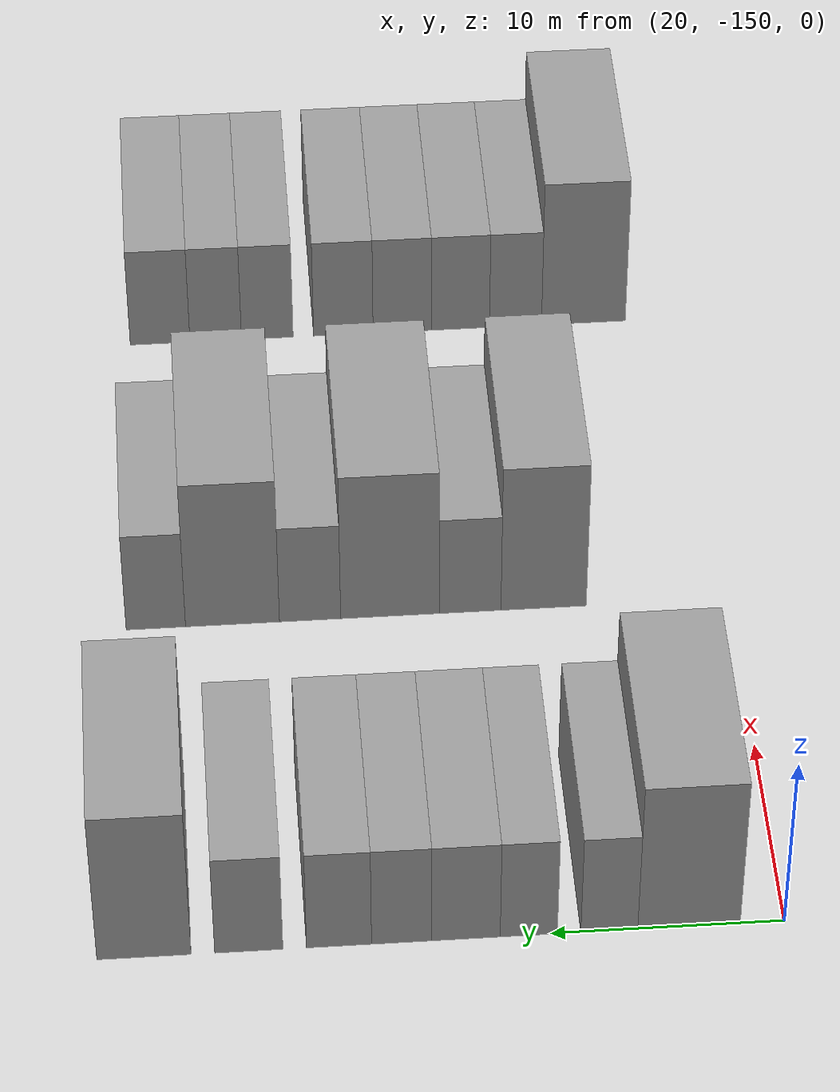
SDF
<sdf version="1.6">
 <world name="default">
  <model name="building_25">
   <static>1</static>
   <pose>25.0000 -145.9034 0 0.000000 0.000000 0.000000</pose>
   <link name="link">
    <pose>0 0 4.50 0 0 0</pose>
    <collision name="collision"><geometry><box><size>10.0000 4.3817 9.0000</size></box></geometry></collision>
    <visual name="visual">
     <cast_shadows>0</cast_shadows>
     <geometry><box><size>10.0000 4.3817 9.0000</size></box></geometry>
     <material>
      <script>
       <uri>model://grey_wall/materials/scripts</uri>
       <uri>model://grey_wall/materials/textures</uri>
       <name>vrc/grey_wall</name>
      </script>
     </material>
    </visual>
   </link>
  </model>
  <model name="building_26">
   <static>1</static>
   <pose>25.0000 -142.4988 0 0.000000 0.000000 0.000000</pose>
   <link name="link">
    <pose>0 0 3.00 0 0 0</pose>
    <collision name="collision"><geometry><box><size>10.0000 2.4275 6.0000</size></box></geometry></collision>
    <visual name="visual">
     <cast_shadows>0</cast_shadows>
     <geometry><box><size>10.0000 2.4275 6.0000</size></box></geometry>
     <material>
      <script>
       <uri>model://grey_wall/materials/scripts</uri>
       <uri>model://grey_wall/materials/textures</uri>
       <name>vrc/grey_wall</name>
      </script>
     </material>
    </visual>
   </link>
  </model>
  <model name="building_27">
   <static>1</static>
   <pose>25.0000 -139.0678 0 0.000000 0.000000 0.000000</pose>
   <link name="link">
    <pose>0 0 3.00 0 0 0</pose>
    <collision name="collision"><geometry><box><size>10.0000 2.4345 6.0000</size></box></geometry></collision>
    <visual name="visual">
     <cast_shadows>0</cast_shadows>
     <geometry><box><size>10.0000 2.4345 6.0000</size></box></geometry>
     <material>
      <script>
       <uri>model://grey_wall/materials/scripts</uri>
       <uri>model://grey_wall/materials/textures</uri>
       <name>vrc/grey_wall</name>
      </script>
     </material>
    </visual>
   </link>
  </model>
  <model name="building_28">
   <static>1</static>
   <pose>25.0000 -136.3945 0 0.000000 0.000000 0.000000</pose>
   <link name="link">
    <pose>0 0 3.00 0 0 0</pose>
    <collision name="collision"><geometry><box><size>10.0000 2.9121 6.0000</size></box></geometry></collision>
    <visual name="visual">
     <cast_shadows>0</cast_shadows>
     <geometry><box><size>10.0000 2.9121 6.0000</size></box></geometry>
     <material>
      <script>
       <uri>model://grey_wall/materials/scripts</uri>
       <uri>model://grey_wall/materials/textures</uri>
       <name>vrc/grey_wall</name>
      </script>
     </material>
    </visual>
   </link>
  </model>
  <model name="building_29">
   <static>1</static>
   <pose>25.0000 -133.6613 0 0.000000 0.000000 0.000000</pose>
   <link name="link">
    <pose>0 0 3.00 0 0 0</pose>
    <collision name="collision"><geometry><box><size>10.0000 2.5542 6.0000</size></box></geometry></collision>
    <visual name="visual">
     <cast_shadows>0</cast_shadows>
     <geometry><box><size>10.0000 2.5542 6.0000</size></box></geometry>
     <material>
      <script>
       <uri>model://grey_wall/materials/scripts</uri>
       <uri>model://grey_wall/materials/textures</uri>
       <name>vrc/grey_wall</name>
      </script>
     </material>
    </visual>
   </link>
  </model>
  <model name="building_30">
   <static>1</static>
   <pose>25.0000 -131.0074 0 0.000000 0.000000 0.000000</pose>
   <link name="link">
    <pose>0 0 3.00 0 0 0</pose>
    <collision name="collision"><geometry><box><size>10.0000 2.7537 6.0000</size></box></geometry></collision>
    <visual name="visual">
     <cast_shadows>0</cast_shadows>
     <geometry><box><size>10.0000 2.7537 6.0000</size></box></geometry>
     <material>
      <script>
       <uri>model://grey_wall/materials/scripts</uri>
       <uri>model://grey_wall/materials/textures</uri>
       <name>vrc/grey_wall</name>
      </script>
     </material>
    </visual>
   </link>
  </model>
  <model name="building_31">
   <static>1</static>
   <pose>25.0000 -127.1895 0 0.000000 0.000000 0.000000</pose>
   <link name="link">
    <pose>0 0 3.00 0 0 0</pose>
    <collision name="collision"><geometry><box><size>10.0000 2.8820 6.0000</size></box></geometry></collision>
    <visual name="visual">
     <cast_shadows>0</cast_shadows>
     <geometry><box><size>10.0000 2.8820 6.0000</size></box></geometry>
     <material>
      <script>
       <uri>model://grey_wall/materials/scripts</uri>
       <uri>model://grey_wall/materials/textures</uri>
       <name>vrc/grey_wall</name>
      </script>
     </material>
    </visual>
   </link>
  </model>
  <model name="building_32">
   <static>1</static>
   <pose>25.0000 -122.7616 0 0.000000 0.000000 0.000000</pose>
   <link name="link">
    <pose>0 0 4.50 0 0 0</pose>
    <collision name="collision"><geometry><box><size>10.0000 3.9737 9.0000</size></box></geometry></collision>
    <visual name="visual">
     <cast_shadows>0</cast_shadows>
     <geometry><box><size>10.0000 3.9737 9.0000</size></box></geometry>
     <material>
      <script>
       <uri>model://grey_wall/materials/scripts</uri>
       <uri>model://grey_wall/materials/textures</uri>
       <name>vrc/grey_wall</name>
      </script>
     </material>
    </visual>
   </link>
  </model>
  <model name="building_149">
   <static>1</static>
   <pose>44.0000 -141.4464 0 0.000000 0.000000 0.000000</pose>
   <link name="link">
    <pose>0 0 4.50 0 0 0</pose>
    <collision name="collision"><geometry><box><size>10.0000 3.9095 9.0000</size></box></geometry></collision>
    <visual name="visual">
     <cast_shadows>0</cast_shadows>
     <geometry><box><size>10.0000 3.9095 9.0000</size></box></geometry>
     <material>
      <script>
       <uri>model://grey_wall/materials/scripts</uri>
       <uri>model://grey_wall/materials/textures</uri>
       <name>vrc/grey_wall</name>
      </script>
     </material>
    </visual>
   </link>
  </model>
  <model name="building_150">
   <static>1</static>
   <pose>44.0000 -138.0791 0 0.000000 0.000000 0.000000</pose>
   <link name="link">
    <pose>0 0 3.00 0 0 0</pose>
    <collision name="collision"><geometry><box><size>10.0000 2.8252 6.0000</size></box></geometry></collision>
    <visual name="visual">
     <cast_shadows>0</cast_shadows>
     <geometry><box><size>10.0000 2.8252 6.0000</size></box></geometry>
     <material>
      <script>
       <uri>model://grey_wall/materials/scripts</uri>
       <uri>model://grey_wall/materials/textures</uri>
       <name>vrc/grey_wall</name>
      </script>
     </material>
    </visual>
   </link>
  </model>
  <model name="building_151">
   <static>1</static>
   <pose>44.0000 -134.4181 0 0.000000 0.000000 0.000000</pose>
   <link name="link">
    <pose>0 0 4.50 0 0 0</pose>
    <collision name="collision"><geometry><box><size>10.0000 4.4967 9.0000</size></box></geometry></collision>
    <visual name="visual">
     <cast_shadows>0</cast_shadows>
     <geometry><box><size>10.0000 4.4967 9.0000</size></box></geometry>
     <material>
      <script>
       <uri>model://grey_wall/materials/scripts</uri>
       <uri>model://grey_wall/materials/textures</uri>
       <name>vrc/grey_wall</name>
      </script>
     </material>
    </visual>
   </link>
  </model>
  <model name="building_152">
   <static>1</static>
   <pose>44.0000 -130.7746 0 0.000000 0.000000 0.000000</pose>
   <link name="link">
    <pose>0 0 3.00 0 0 0</pose>
    <collision name="collision"><geometry><box><size>10.0000 2.7904 6.0000</size></box></geometry></collision>
    <visual name="visual">
     <cast_shadows>0</cast_shadows>
     <geometry><box><size>10.0000 2.7904 6.0000</size></box></geometry>
     <material>
      <script>
       <uri>model://grey_wall/materials/scripts</uri>
       <uri>model://grey_wall/materials/textures</uri>
       <name>vrc/grey_wall</name>
      </script>
     </material>
    </visual>
   </link>
  </model>
  <model name="building_153">
   <static>1</static>
   <pose>44.0000 -127.2425 0 0.000000 0.000000 0.000000</pose>
   <link name="link">
    <pose>0 0 4.50 0 0 0</pose>
    <collision name="collision"><geometry><box><size>10.0000 4.2736 9.0000</size></box></geometry></collision>
    <visual name="visual">
     <cast_shadows>0</cast_shadows>
     <geometry><box><size>10.0000 4.2736 9.0000</size></box></geometry>
     <material>
      <script>
       <uri>model://grey_wall/materials/scripts</uri>
       <uri>model://grey_wall/materials/textures</uri>
       <name>vrc/grey_wall</name>
      </script>
     </material>
    </visual>
   </link>
  </model>
  <model name="building_154">
   <static>1</static>
   <pose>44.0000 -123.7593 0 0.000000 0.000000 0.000000</pose>
   <link name="link">
    <pose>0 0 3.00 0 0 0</pose>
    <collision name="collision"><geometry><box><size>10.0000 2.6928 6.0000</size></box></geometry></collision>
    <visual name="visual">
     <cast_shadows>0</cast_shadows>
     <geometry><box><size>10.0000 2.6928 6.0000</size></box></geometry>
     <material>
      <script>
       <uri>model://grey_wall/materials/scripts</uri>
       <uri>model://grey_wall/materials/textures</uri>
       <name>vrc/grey_wall</name>
      </script>
     </material>
    </visual>
   </link>
  </model>
  <model name="building_261">
   <static>1</static>
   <pose>63.0000 -145.1520 0 0.000000 0.000000 0.000000</pose>
   <link name="link">
    <pose>0 0 4.50 0 0 0</pose>
    <collision name="collision"><geometry><box><size>10.0000 4.1149 9.0000</size></box></geometry></collision>
    <visual name="visual">
     <cast_shadows>0</cast_shadows>
     <geometry><box><size>10.0000 4.1149 9.0000</size></box></geometry>
     <material>
      <script>
       <uri>model://grey_wall/materials/scripts</uri>
       <uri>model://grey_wall/materials/textures</uri>
       <name>vrc/grey_wall</name>
      </script>
     </material>
    </visual>
   </link>
  </model>
  <model name="building_262">
   <static>1</static>
   <pose>63.0000 -141.8192 0 0.000000 0.000000 0.000000</pose>
   <link name="link">
    <pose>0 0 3.00 0 0 0</pose>
    <collision name="collision"><geometry><box><size>10.0000 2.5507 6.0000</size></box></geometry></collision>
    <visual name="visual">
     <cast_shadows>0</cast_shadows>
     <geometry><box><size>10.0000 2.5507 6.0000</size></box></geometry>
     <material>
      <script>
       <uri>model://grey_wall/materials/scripts</uri>
       <uri>model://grey_wall/materials/textures</uri>
       <name>vrc/grey_wall</name>
      </script>
     </material>
    </visual>
   </link>
  </model>
  <model name="building_263">
   <static>1</static>
   <pose>63.0000 -139.1213 0 0.000000 0.000000 0.000000</pose>
   <link name="link">
    <pose>0 0 3.00 0 0 0</pose>
    <collision name="collision"><geometry><box><size>10.0000 2.8452 6.0000</size></box></geometry></collision>
    <visual name="visual">
     <cast_shadows>0</cast_shadows>
     <geometry><box><size>10.0000 2.8452 6.0000</size></box></geometry>
     <material>
      <script>
       <uri>model://grey_wall/materials/scripts</uri>
       <uri>model://grey_wall/materials/textures</uri>
       <name>vrc/grey_wall</name>
      </script>
     </material>
    </visual>
   </link>
  </model>
  <model name="building_264">
   <static>1</static>
   <pose>63.0000 -136.2713 0 0.000000 0.000000 0.000000</pose>
   <link name="link">
    <pose>0 0 3.00 0 0 0</pose>
    <collision name="collision"><geometry><box><size>10.0000 2.8547 6.0000</size></box></geometry></collision>
    <visual name="visual">
     <cast_shadows>0</cast_shadows>
     <geometry><box><size>10.0000 2.8547 6.0000</size></box></geometry>
     <material>
      <script>
       <uri>model://grey_wall/materials/scripts</uri>
       <uri>model://grey_wall/materials/textures</uri>
       <name>vrc/grey_wall</name>
      </script>
     </material>
    </visual>
   </link>
  </model>
  <model name="building_265">
   <static>1</static>
   <pose>63.0000 -133.3930 0 0.000000 0.000000 0.000000</pose>
   <link name="link">
    <pose>0 0 3.00 0 0 0</pose>
    <collision name="collision"><geometry><box><size>10.0000 2.9019 6.0000</size></box></geometry></collision>
    <visual name="visual">
     <cast_shadows>0</cast_shadows>
     <geometry><box><size>10.0000 2.9019 6.0000</size></box></geometry>
     <material>
      <script>
       <uri>model://grey_wall/materials/scripts</uri>
       <uri>model://grey_wall/materials/textures</uri>
       <name>vrc/grey_wall</name>
      </script>
     </material>
    </visual>
   </link>
  </model>
  <model name="building_266">
   <static>1</static>
   <pose>63.0000 -129.6825 0 0.000000 0.000000 0.000000</pose>
   <link name="link">
    <pose>0 0 3.00 0 0 0</pose>
    <collision name="collision"><geometry><box><size>10.0000 2.5192 6.0000</size></box></geometry></collision>
    <visual name="visual">
     <cast_shadows>0</cast_shadows>
     <geometry><box><size>10.0000 2.5192 6.0000</size></box></geometry>
     <material>
      <script>
       <uri>model://grey_wall/materials/scripts</uri>
       <uri>model://grey_wall/materials/textures</uri>
       <name>vrc/grey_wall</name>
      </script>
     </material>
    </visual>
   </link>
  </model>
  <model name="building_267">
   <static>1</static>
   <pose>63.0000 -127.1682 0 0.000000 0.000000 0.000000</pose>
   <link name="link">
    <pose>0 0 3.00 0 0 0</pose>
    <collision name="collision"><geometry><box><size>10.0000 2.5094 6.0000</size></box></geometry></collision>
    <visual name="visual">
     <cast_shadows>0</cast_shadows>
     <geometry><box><size>10.0000 2.5094 6.0000</size></box></geometry>
     <material>
      <script>
       <uri>model://grey_wall/materials/scripts</uri>
       <uri>model://grey_wall/materials/textures</uri>
       <name>vrc/grey_wall</name>
      </script>
     </material>
    </visual>
   </link>
  </model>
  <model name="building_268">
   <static>1</static>
   <pose>63.0000 -124.4638 0 0.000000 0.000000 0.000000</pose>
   <link name="link">
    <pose>0 0 3.00 0 0 0</pose>
    <collision name="collision"><geometry><box><size>10.0000 2.8994 6.0000</size></box></geometry></collision>
    <visual name="visual">
     <cast_shadows>0</cast_shadows>
     <geometry><box><size>10.0000 2.8994 6.0000</size></box></geometry>
     <material>
      <script>
       <uri>model://grey_wall/materials/scripts</uri>
       <uri>model://grey_wall/materials/textures</uri>
       <name>vrc/grey_wall</name>
      </script>
     </material>
    </visual>
   </link>
  </model>
 </world>
</sdf>
